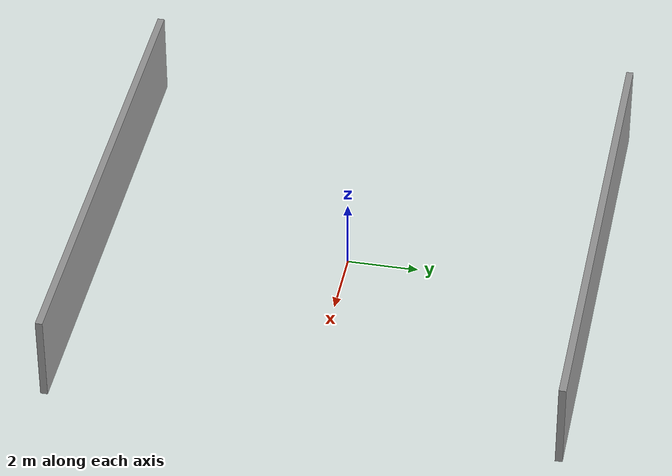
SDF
<?xml version='1.0'?>
<sdf version='1.4'>
  <model name='model'>
    <link name='Wall_0'>
      <collision name='Wall_0_Collision'>
        <geometry>
          <box>
            <size>14 0.2 2.5</size>
          </box>
        </geometry>
        <pose>0 0 1.25 0 -0 0</pose>
      </collision>
      <visual name='Wall_0_Visual'>
        <pose>0 0 1.25 0 -0 0</pose>
        <geometry>
          <box>
            <size>14 0.2 2.5</size>
          </box>
        </geometry>
        <material>
          <script>
            <uri>file://media/materials/scripts/gazebo.material</uri>
            <name>Gazebo/Grey</name>
          </script>
        </material>
      </visual>
      <velocity_decay>
        <linear>0</linear>
        <angular>0</angular>
      </velocity_decay>
      <pose>0 7 0 0 -0 0</pose>
    </link>
    <link name='Wall_2'>
      <collision name='Wall_2_Collision'>
        <geometry>
          <box>
            <size>14 0.2 2.5</size>
          </box>
        </geometry>
        <pose>0 0 1.25 0 -0 0</pose>
      </collision>
      <visual name='Wall_2_Visual'>
        <pose>0 0 1.25 0 -0 0</pose>
        <geometry>
          <box>
            <size>14 0.2 2.5</size>
          </box>
        </geometry>
        <material>
          <script>
            <uri>file://media/materials/scripts/gazebo.material</uri>
            <name>Gazebo/Grey</name>
          </script>
        </material>
      </visual>
      <velocity_decay>
        <linear>0</linear>
        <angular>0</angular>
      </velocity_decay>
      <pose>0 -7 0 0 -0 0</pose>
    </link>
    <static>1</static>
  </model>
</sdf>
